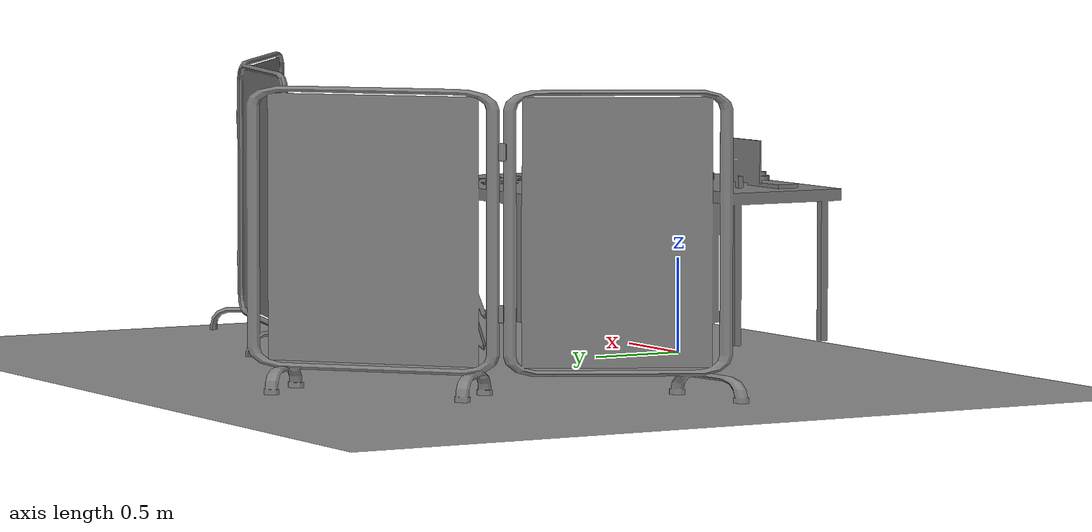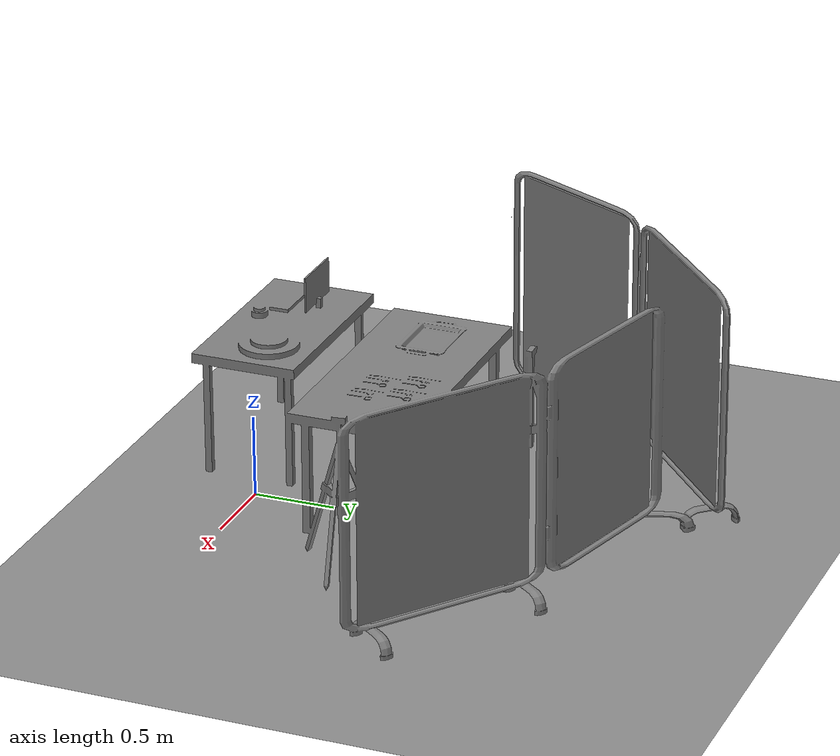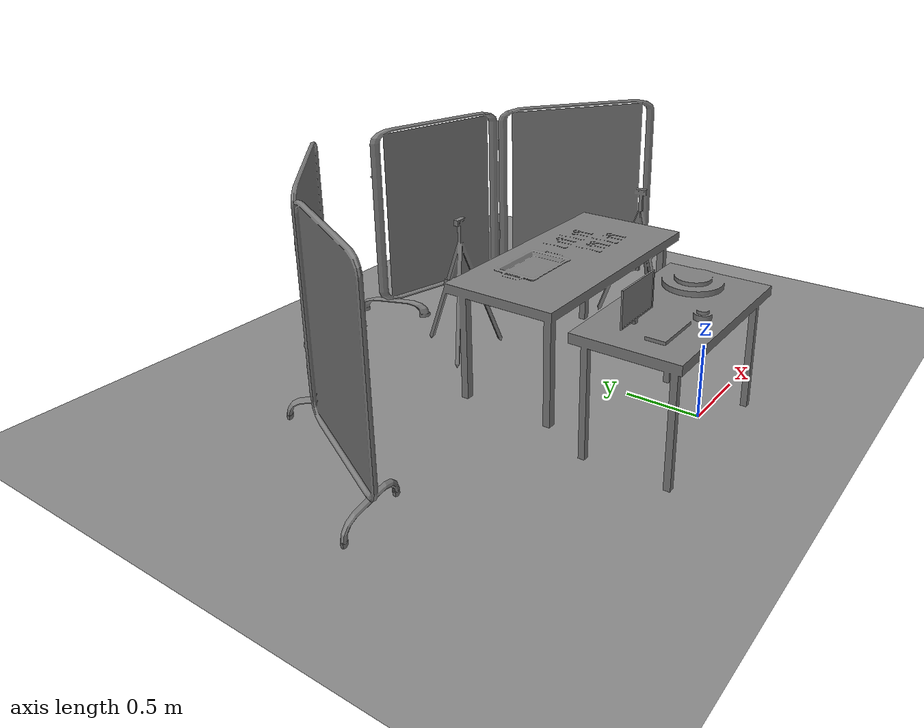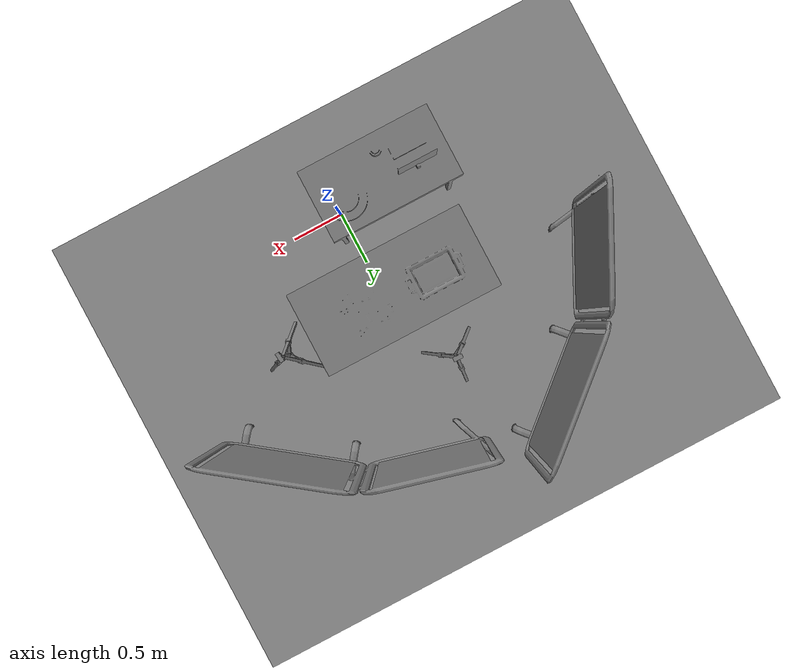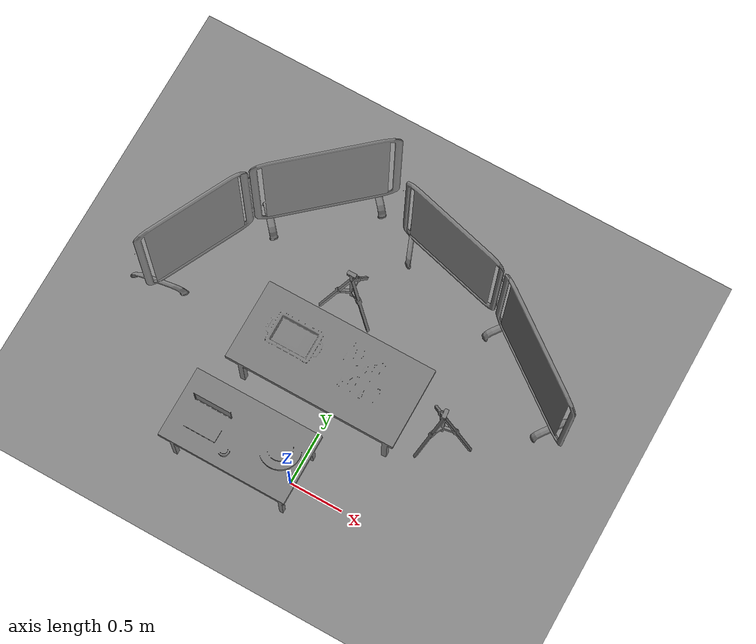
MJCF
<mujoco model="teleop_station_scene">
  <compiler angle="radian" meshdir="assets"/>

  <option timestep="0.002" gravity="0 0 -9.81"/>

  <asset>
    <mesh name="teleop_station_mesh" file="meshes/teleop_station2.obj"/>
  </asset>

  <worldbody>
    <light name="top_light" pos="0 0 3"/>

    <camera name="overview"
            pos="2.5 -2.5 1.6"
            xyaxes="0.7 0.7 0 -0.4 0.4 0.82"/>

    <geom name="floor"
          type="plane"
          size="5 5 0.1"
          rgba="0.55 0.55 0.55 1"/>

    <body name="teleop_station" pos="0 0 0.14" euler="1.5708 0 0">
    <geom name="teleop_station_visual"
            type="mesh"
            mesh="teleop_station_mesh"
            contype="0"
            conaffinity="0"/>
    </body>
  </worldbody>
</mujoco>
